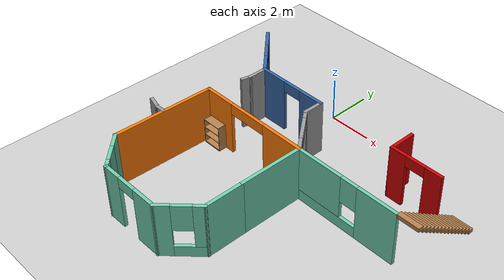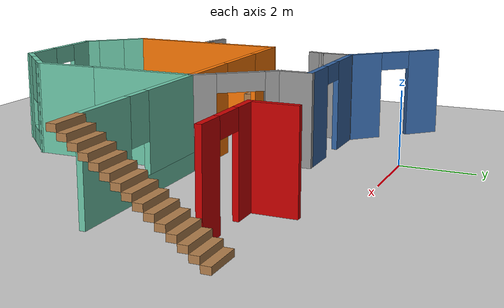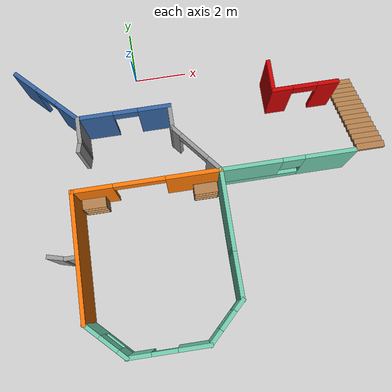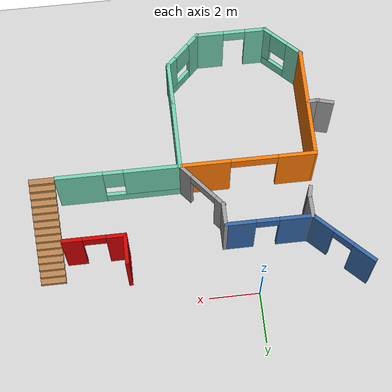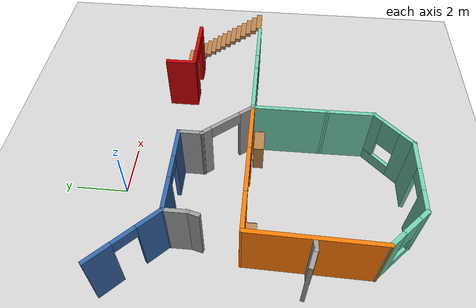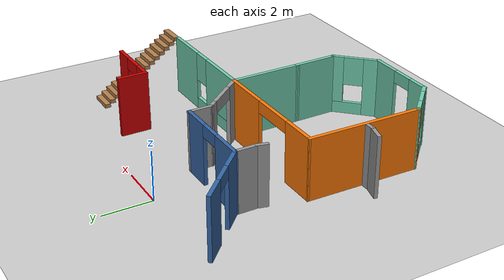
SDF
<sdf version="1.6">
 <world name="default">
  <model name="ground_plane">
   <static>1</static>
   <link name="link">
    <collision name="collision">
     <geometry><plane><normal>0 0 1</normal><size>100 100</size></plane></geometry>
     <surface>
      <contact><collide_bitmask>65535</collide_bitmask></contact>
      <friction><ode><mu>100</mu><mu2>50</mu2></ode></friction>
     </surface>
    </collision>
    <visual name="visual">
     <cast_shadows>0</cast_shadows>
     <geometry><plane><normal>0 0 1</normal><size>100 100</size></plane></geometry>
     <material>
      <script><uri>file://media/materials/scripts/gazebo.material</uri><name>Gazebo/Grey</name></script>
     </material>
    </visual>
   </link>
  </model>
  <model name="model">
   <pose>-1.34408 -2.0758 0 0 -0 0</pose>
   <link name="Stairs_0">
    <visual name="Stairs_0_Visual_0">
     <pose>9.38776 0.705751 0.083333 0 -0 0</pose>
     <geometry><box><size>1 0.233333 0.166667</size></box></geometry>
     <material>
      <script><uri>file://media/materials/scripts/gazebo.material</uri><name>Gazebo/Wood</name></script>
      <ambient>1 1 1 1</ambient>
     </material>
     <meta><layer>0</layer></meta>
    </visual>
    <collision name="Stairs_0_Collision_0">
     <geometry><box><size>1 0.233333 0.166667</size></box></geometry>
     <pose>9.38776 0.705751 0.083333 0 -0 0</pose>
    </collision>
    <visual name="Stairs_0_Visual_1">
     <pose>9.38776 0.472418 0.25 0 -0 0</pose>
     <geometry><box><size>1 0.233333 0.166667</size></box></geometry>
     <material>
      <script><uri>file://media/materials/scripts/gazebo.material</uri><name>Gazebo/Wood</name></script>
      <ambient>1 1 1 1</ambient>
     </material>
     <meta><layer>0</layer></meta>
    </visual>
    <collision name="Stairs_0_Collision_1">
     <geometry><box><size>1 0.233333 0.166667</size></box></geometry>
     <pose>9.38776 0.472418 0.25 0 -0 0</pose>
    </collision>
    <visual name="Stairs_0_Visual_2">
     <pose>9.38776 0.239084 0.416667 0 -0 0</pose>
     <geometry><box><size>1 0.233333 0.166667</size></box></geometry>
     <material>
      <script><uri>file://media/materials/scripts/gazebo.material</uri><name>Gazebo/Wood</name></script>
      <ambient>1 1 1 1</ambient>
     </material>
     <meta><layer>0</layer></meta>
    </visual>
    <collision name="Stairs_0_Collision_2">
     <geometry><box><size>1 0.233333 0.166667</size></box></geometry>
     <pose>9.38776 0.239084 0.416667 0 -0 0</pose>
    </collision>
    <visual name="Stairs_0_Visual_3">
     <pose>9.38776 0.005751 0.583333 0 -0 0</pose>
     <geometry><box><size>1 0.233333 0.166667</size></box></geometry>
     <material>
      <script><uri>file://media/materials/scripts/gazebo.material</uri><name>Gazebo/Wood</name></script>
      <ambient>1 1 1 1</ambient>
     </material>
     <meta><layer>0</layer></meta>
    </visual>
    <collision name="Stairs_0_Collision_3">
     <geometry><box><size>1 0.233333 0.166667</size></box></geometry>
     <pose>9.38776 0.005751 0.583333 0 -0 0</pose>
    </collision>
    <visual name="Stairs_0_Visual_4">
     <pose>9.38776 -0.227582 0.75 0 -0 0</pose>
     <geometry><box><size>1 0.233333 0.166667</size></box></geometry>
     <material>
      <script><uri>file://media/materials/scripts/gazebo.material</uri><name>Gazebo/Wood</name></script>
      <ambient>1 1 1 1</ambient>
     </material>
     <meta><layer>0</layer></meta>
    </visual>
    <collision name="Stairs_0_Collision_4">
     <geometry><box><size>1 0.233333 0.166667</size></box></geometry>
     <pose>9.38776 -0.227582 0.75 0 -0 0</pose>
    </collision>
    <visual name="Stairs_0_Visual_5">
     <pose>9.38776 -0.460916 0.916667 0 -0 0</pose>
     <geometry><box><size>1 0.233333 0.166667</size></box></geometry>
     <material>
      <script><uri>file://media/materials/scripts/gazebo.material</uri><name>Gazebo/Wood</name></script>
      <ambient>1 1 1 1</ambient>
     </material>
     <meta><layer>0</layer></meta>
    </visual>
    <collision name="Stairs_0_Collision_5">
     <geometry><box><size>1 0.233333 0.166667</size></box></geometry>
     <pose>9.38776 -0.460916 0.916667 0 -0 0</pose>
    </collision>
    <visual name="Stairs_0_Visual_6">
     <pose>9.38776 -0.694249 1.08333 0 -0 0</pose>
     <geometry><box><size>1 0.233333 0.166667</size></box></geometry>
     <material>
      <script><uri>file://media/materials/scripts/gazebo.material</uri><name>Gazebo/Wood</name></script>
      <ambient>1 1 1 1</ambient>
     </material>
     <meta><layer>0</layer></meta>
    </visual>
    <collision name="Stairs_0_Collision_6">
     <geometry><box><size>1 0.233333 0.166667</size></box></geometry>
     <pose>9.38776 -0.694249 1.08333 0 -0 0</pose>
    </collision>
    <visual name="Stairs_0_Visual_7">
     <pose>9.38776 -0.927582 1.25 0 -0 0</pose>
     <geometry><box><size>1 0.233333 0.166667</size></box></geometry>
     <material>
      <script><uri>file://media/materials/scripts/gazebo.material</uri><name>Gazebo/Wood</name></script>
      <ambient>1 1 1 1</ambient>
     </material>
     <meta><layer>0</layer></meta>
    </visual>
    <collision name="Stairs_0_Collision_7">
     <geometry><box><size>1 0.233333 0.166667</size></box></geometry>
     <pose>9.38776 -0.927582 1.25 0 -0 0</pose>
    </collision>
    <visual name="Stairs_0_Visual_8">
     <pose>9.38776 -1.16092 1.41667 0 -0 0</pose>
     <geometry><box><size>1 0.233333 0.166667</size></box></geometry>
     <material>
      <script><uri>file://media/materials/scripts/gazebo.material</uri><name>Gazebo/Wood</name></script>
      <ambient>1 1 1 1</ambient>
     </material>
     <meta><layer>0</layer></meta>
    </visual>
    <collision name="Stairs_0_Collision_8">
     <geometry><box><size>1 0.233333 0.166667</size></box></geometry>
     <pose>9.38776 -1.16092 1.41667 0 -0 0</pose>
    </collision>
    <visual name="Stairs_0_Visual_9">
     <pose>9.38776 -1.39425 1.58333 0 -0 0</pose>
     <geometry><box><size>1 0.233333 0.166667</size></box></geometry>
     <material>
      <script><uri>file://media/materials/scripts/gazebo.material</uri><name>Gazebo/Wood</name></script>
      <ambient>1 1 1 1</ambient>
     </material>
     <meta><layer>0</layer></meta>
    </visual>
    <collision name="Stairs_0_Collision_9">
     <geometry><box><size>1 0.233333 0.166667</size></box></geometry>
     <pose>9.38776 -1.39425 1.58333 0 -0 0</pose>
    </collision>
    <visual name="Stairs_0_Visual_10">
     <pose>9.38776 -1.62758 1.75 0 -0 0</pose>
     <geometry><box><size>1 0.233333 0.166667</size></box></geometry>
     <material>
      <script><uri>file://media/materials/scripts/gazebo.material</uri><name>Gazebo/Wood</name></script>
      <ambient>1 1 1 1</ambient>
     </material>
     <meta><layer>0</layer></meta>
    </visual>
    <collision name="Stairs_0_Collision_10">
     <geometry><box><size>1 0.233333 0.166667</size></box></geometry>
     <pose>9.38776 -1.62758 1.75 0 -0 0</pose>
    </collision>
    <visual name="Stairs_0_Visual_11">
     <pose>9.38776 -1.86092 1.91667 0 -0 0</pose>
     <geometry><box><size>1 0.233333 0.166667</size></box></geometry>
     <material>
      <script><uri>file://media/materials/scripts/gazebo.material</uri><name>Gazebo/Wood</name></script>
      <ambient>1 1 1 1</ambient>
     </material>
     <meta><layer>0</layer></meta>
    </visual>
    <collision name="Stairs_0_Collision_11">
     <geometry><box><size>1 0.233333 0.166667</size></box></geometry>
     <pose>9.38776 -1.86092 1.91667 0 -0 0</pose>
    </collision>
    <visual name="Stairs_0_Visual_12">
     <pose>9.38776 -2.09425 2.08333 0 -0 0</pose>
     <geometry><box><size>1 0.233333 0.166667</size></box></geometry>
     <material>
      <script><uri>file://media/materials/scripts/gazebo.material</uri><name>Gazebo/Wood</name></script>
      <ambient>1 1 1 1</ambient>
     </material>
     <meta><layer>0</layer></meta>
    </visual>
    <collision name="Stairs_0_Collision_12">
     <geometry><box><size>1 0.233333 0.166667</size></box></geometry>
     <pose>9.38776 -2.09425 2.08333 0 -0 0</pose>
    </collision>
    <visual name="Stairs_0_Visual_13">
     <pose>9.38776 -2.32758 2.25 0 -0 0</pose>
     <geometry><box><size>1 0.233333 0.166667</size></box></geometry>
     <material>
      <script><uri>file://media/materials/scripts/gazebo.material</uri><name>Gazebo/Wood</name></script>
      <ambient>1 1 1 1</ambient>
     </material>
     <meta><layer>0</layer></meta>
    </visual>
    <collision name="Stairs_0_Collision_13">
     <geometry><box><size>1 0.233333 0.166667</size></box></geometry>
     <pose>9.38776 -2.32758 2.25 0 -0 0</pose>
    </collision>
    <visual name="Stairs_0_Visual_14">
     <pose>9.38776 -2.56092 2.41667 0 -0 0</pose>
     <geometry><box><size>1 0.233333 0.166667</size></box></geometry>
     <material>
      <script><uri>file://media/materials/scripts/gazebo.material</uri><name>Gazebo/Wood</name></script>
      <ambient>1 1 1 1</ambient>
     </material>
     <meta><layer>0</layer></meta>
    </visual>
    <collision name="Stairs_0_Collision_14">
     <geometry><box><size>1 0.233333 0.166667</size></box></geometry>
     <pose>9.38776 -2.56092 2.41667 0 -0 0</pose>
    </collision>
   </link>
   <link name="Wall_12">
    <pose>6.41224 -2.63039 0 0 -0 3.14159</pose>
    <visual name="Wall_12_Visual_0">
     <pose>-1.55241 0 1.25 0 -0 0</pose>
     <geometry><box><size>1.89517 0.15 2.5</size></box></geometry>
     <material>
      <script><uri>file://media/materials/scripts/gazebo.material</uri><name>Gazebo/Grey</name></script>
      <ambient>0.435294 0.796078 0.67451 1</ambient>
     </material>
     <meta><layer>0</layer></meta>
    </visual>
    <collision name="Wall_12_Collision_0">
     <geometry><box><size>1.89517 0.15 2.5</size></box></geometry>
     <pose>-1.55241 0 1.25 0 -0 0</pose>
    </collision>
    <visual name="Wall_12_Visual_1">
     <pose>0.947587 0 0.25 0 -0 0</pose>
     <geometry><box><size>3.10483 0.15 0.5</size></box></geometry>
     <material>
      <script><uri>file://media/materials/scripts/gazebo.material</uri><name>Gazebo/Grey</name></script>
      <ambient>0.435294 0.796078 0.67451 1</ambient>
     </material>
     <meta><layer>0</layer></meta>
    </visual>
    <collision name="Wall_12_Collision_1">
     <geometry><box><size>3.10483 0.15 0.5</size></box></geometry>
     <pose>0.947587 0 0.25 0 -0 0</pose>
    </collision>
    <visual name="Wall_12_Visual_2">
     <pose>1.34759 0 1.5 0 -0 0</pose>
     <geometry><box><size>2.30483 0.15 2</size></box></geometry>
     <material>
      <script><uri>file://media/materials/scripts/gazebo.material</uri><name>Gazebo/Grey</name></script>
      <ambient>0.435294 0.796078 0.67451 1</ambient>
     </material>
     <meta><layer>0</layer></meta>
    </visual>
    <collision name="Wall_12_Collision_2">
     <geometry><box><size>2.30483 0.15 2</size></box></geometry>
     <pose>1.34759 0 1.5 0 -0 0</pose>
    </collision>
    <visual name="Wall_12_Visual_3">
     <pose>-0.204827 0 1.9 0 -0 0</pose>
     <geometry><box><size>0.8 0.15 1.2</size></box></geometry>
     <material>
      <script><uri>file://media/materials/scripts/gazebo.material</uri><name>Gazebo/Grey</name></script>
      <ambient>0.435294 0.796078 0.67451 1</ambient>
     </material>
     <meta><layer>0</layer></meta>
    </visual>
    <collision name="Wall_12_Collision_3">
     <geometry><box><size>0.8 0.15 1.2</size></box></geometry>
     <pose>-0.204827 0 1.9 0 -0 0</pose>
    </collision>
   </link>
   <link name="Wall_13">
    <collision name="Wall_13_Collision">
     <geometry><box><size>3 0.15 2.5</size></box></geometry>
     <pose>0 0 1.25 0 -0 0</pose>
    </collision>
    <visual name="Wall_13_Visual">
     <pose>0 0 1.25 0 -0 0</pose>
     <geometry><box><size>3 0.15 2.5</size></box></geometry>
     <material>
      <script><uri>file://media/materials/scripts/gazebo.material</uri><name>Gazebo/Grey</name></script>
      <ambient>0.435294 0.796078 0.67451 1</ambient>
     </material>
     <meta><layer>0</layer></meta>
    </visual>
    <pose>3.98724 -4.05539 0 0 -0 -1.5708</pose>
   </link>
   <link name="Wall_28">
    <pose>-1.85172 1.0145 0 0 -0 -0.785398</pose>
    <visual name="Wall_28_Visual_0">
     <pose>-0.981423 0 1.25 0 -0 0</pose>
     <geometry><box><size>1.03716 0.15 2.5</size></box></geometry>
     <material>
      <script><uri>file://media/materials/scripts/gazebo.material</uri><name>Gazebo/Grey</name></script>
      <ambient>0.203922 0.396078 0.643137 1</ambient>
     </material>
     <meta><layer>0</layer></meta>
    </visual>
    <collision name="Wall_28_Collision_0">
     <geometry><box><size>1.03716 0.15 2.5</size></box></geometry>
     <pose>-0.981423 0 1.25 0 -0 0</pose>
    </collision>
    <visual name="Wall_28_Visual_1">
     <pose>0.968577 0 1.25 0 -0 0</pose>
     <geometry><box><size>1.06285 0.15 2.5</size></box></geometry>
     <material>
      <script><uri>file://media/materials/scripts/gazebo.material</uri><name>Gazebo/Grey</name></script>
      <ambient>0.203922 0.396078 0.643137 1</ambient>
     </material>
     <meta><layer>0</layer></meta>
    </visual>
    <collision name="Wall_28_Collision_1">
     <geometry><box><size>1.06285 0.15 2.5</size></box></geometry>
     <pose>0.968577 0 1.25 0 -0 0</pose>
    </collision>
    <visual name="Wall_28_Visual_2">
     <pose>-0.012845 0 2.25 0 -0 0</pose>
     <geometry><box><size>0.9 0.15 0.5</size></box></geometry>
     <material>
      <script><uri>file://media/materials/scripts/gazebo.material</uri><name>Gazebo/Grey</name></script>
      <ambient>0.203922 0.396078 0.643137 1</ambient>
     </material>
     <meta><layer>0</layer></meta>
    </visual>
    <collision name="Wall_28_Collision_2">
     <geometry><box><size>0.9 0.15 0.5</size></box></geometry>
     <pose>-0.012845 0 2.25 0 -0 0</pose>
    </collision>
   </link>
   <link name="Wall_31">
    <pose>0.83091 0.006871 0 0 -0 0</pose>
    <visual name="Wall_31_Visual_0">
     <pose>-1.06671 0 1.25 0 -0 0</pose>
     <geometry><box><size>1.36658 0.15 2.5</size></box></geometry>
     <material>
      <script><uri>file://media/materials/scripts/gazebo.material</uri><name>Gazebo/Grey</name></script>
      <ambient>0.203922 0.396078 0.643137 1</ambient>
     </material>
     <meta><layer>0</layer></meta>
    </visual>
    <collision name="Wall_31_Collision_0">
     <geometry><box><size>1.36658 0.15 2.5</size></box></geometry>
     <pose>-1.06671 0 1.25 0 -0 0</pose>
    </collision>
    <visual name="Wall_31_Visual_1">
     <pose>1.13329 0 1.25 0 -0 0</pose>
     <geometry><box><size>1.23341 0.15 2.5</size></box></geometry>
     <material>
      <script><uri>file://media/materials/scripts/gazebo.material</uri><name>Gazebo/Grey</name></script>
      <ambient>0.203922 0.396078 0.643137 1</ambient>
     </material>
     <meta><layer>0</layer></meta>
    </visual>
    <collision name="Wall_31_Collision_1">
     <geometry><box><size>1.23341 0.15 2.5</size></box></geometry>
     <pose>1.13329 0 1.25 0 -0 0</pose>
    </collision>
    <visual name="Wall_31_Visual_2">
     <pose>0.066585 0 2.25 0 -0 0</pose>
     <geometry><box><size>0.9 0.15 0.5</size></box></geometry>
     <material>
      <script><uri>file://media/materials/scripts/gazebo.material</uri><name>Gazebo/Grey</name></script>
      <ambient>0.203922 0.396078 0.643137 1</ambient>
     </material>
     <meta><layer>0</layer></meta>
    </visual>
    <collision name="Wall_31_Collision_2">
     <geometry><box><size>0.9 0.15 0.5</size></box></geometry>
     <pose>0.066585 0 2.25 0 -0 0</pose>
    </collision>
   </link>
   <link name="Wall_42">
    <collision name="Wall_42_Collision">
     <geometry><box><size>1.25 0.15 2.5</size></box></geometry>
     <pose>0 0 1.25 0 -0 0</pose>
    </collision>
    <visual name="Wall_42_Visual">
     <pose>0 0 1.25 0 -0 0</pose>
     <geometry><box><size>1.25 0.15 2.5</size></box></geometry>
     <material>
      <script><uri>file://media/materials/scripts/gazebo.material</uri><name>Gazebo/Grey</name></script>
      <ambient>0.8 0 0 1</ambient>
     </material>
     <meta><layer>0</layer></meta>
    </visual>
    <pose>6.34947 0.557478 0 0 -0 -1.5708</pose>
   </link>
   <link name="Wall_43">
    <pose>7.52447 0.007478 0 0 -0 0</pose>
    <visual name="Wall_43_Visual_0">
     <pose>-0.852595 0 1.25 0 -0 0</pose>
     <geometry><box><size>0.794811 0.15 2.5</size></box></geometry>
     <material>
      <script><uri>file://media/materials/scripts/gazebo.material</uri><name>Gazebo/Grey</name></script>
      <ambient>0.8 0 0 1</ambient>
     </material>
     <meta><layer>0</layer></meta>
    </visual>
    <collision name="Wall_43_Collision_0">
     <geometry><box><size>0.794811 0.15 2.5</size></box></geometry>
     <pose>-0.852595 0 1.25 0 -0 0</pose>
    </collision>
    <visual name="Wall_43_Visual_1">
     <pose>0.847405 0 1.25 0 -0 0</pose>
     <geometry><box><size>0.805189 0.15 2.5</size></box></geometry>
     <material>
      <script><uri>file://media/materials/scripts/gazebo.material</uri><name>Gazebo/Grey</name></script>
      <ambient>0.8 0 0 1</ambient>
     </material>
     <meta><layer>0</layer></meta>
    </visual>
    <collision name="Wall_43_Collision_1">
     <geometry><box><size>0.805189 0.15 2.5</size></box></geometry>
     <pose>0.847405 0 1.25 0 -0 0</pose>
    </collision>
    <visual name="Wall_43_Visual_2">
     <pose>-0.005189 0 2.25 0 -0 0</pose>
     <geometry><box><size>0.9 0.15 0.5</size></box></geometry>
     <material>
      <script><uri>file://media/materials/scripts/gazebo.material</uri><name>Gazebo/Grey</name></script>
      <ambient>0.8 0 0 1</ambient>
     </material>
     <meta><layer>0</layer></meta>
    </visual>
    <collision name="Wall_43_Collision_2">
     <geometry><box><size>0.9 0.15 0.5</size></box></geometry>
     <pose>-0.005189 0 2.25 0 -0 0</pose>
    </collision>
   </link>
   <link name="Wall_58">
    <pose>-0.808686 -7.88447 0 0 -0 -0.785398</pose>
    <visual name="Wall_58_Visual_0">
     <pose>-0.62591 0 1.25 0 -0 0</pose>
     <geometry><box><size>0.74818 0.15 2.5</size></box></geometry>
     <material>
      <script><uri>file://media/materials/scripts/gazebo.material</uri><name>Gazebo/Grey</name></script>
      <ambient>0.435294 0.796078 0.67451 1</ambient>
     </material>
     <meta><layer>0</layer></meta>
    </visual>
    <collision name="Wall_58_Collision_0">
     <geometry><box><size>0.74818 0.15 2.5</size></box></geometry>
     <pose>-0.62591 0 1.25 0 -0 0</pose>
    </collision>
    <visual name="Wall_58_Visual_1">
     <pose>0.37409 0 0.25 0 -0 0</pose>
     <geometry><box><size>1.25182 0.15 0.5</size></box></geometry>
     <material>
      <script><uri>file://media/materials/scripts/gazebo.material</uri><name>Gazebo/Grey</name></script>
      <ambient>0.435294 0.796078 0.67451 1</ambient>
     </material>
     <meta><layer>0</layer></meta>
    </visual>
    <collision name="Wall_58_Collision_1">
     <geometry><box><size>1.25182 0.15 0.5</size></box></geometry>
     <pose>0.37409 0 0.25 0 -0 0</pose>
    </collision>
    <visual name="Wall_58_Visual_2">
     <pose>0.77409 0 1.5 0 -0 0</pose>
     <geometry><box><size>0.45182 0.15 2</size></box></geometry>
     <material>
      <script><uri>file://media/materials/scripts/gazebo.material</uri><name>Gazebo/Grey</name></script>
      <ambient>0.435294 0.796078 0.67451 1</ambient>
     </material>
     <meta><layer>0</layer></meta>
    </visual>
    <collision name="Wall_58_Collision_2">
     <geometry><box><size>0.45182 0.15 2</size></box></geometry>
     <pose>0.77409 0 1.5 0 -0 0</pose>
    </collision>
    <visual name="Wall_58_Visual_3">
     <pose>0.14818 0 1.9 0 -0 0</pose>
     <geometry><box><size>0.8 0.15 1.2</size></box></geometry>
     <material>
      <script><uri>file://media/materials/scripts/gazebo.material</uri><name>Gazebo/Grey</name></script>
      <ambient>0.435294 0.796078 0.67451 1</ambient>
     </material>
     <meta><layer>0</layer></meta>
    </visual>
    <collision name="Wall_58_Collision_3">
     <geometry><box><size>0.8 0.15 1.2</size></box></geometry>
     <pose>0.14818 0 1.9 0 -0 0</pose>
    </collision>
   </link>
   <link name="Wall_59">
    <pose>1.27039 -8.53854 0 0 -0 0</pose>
    <visual name="Wall_59_Visual_0">
     <pose>-1.04657 0 1.25 0 -0 0</pose>
     <geometry><box><size>0.906857 0.15 2.5</size></box></geometry>
     <material>
      <script><uri>file://media/materials/scripts/gazebo.material</uri><name>Gazebo/Grey</name></script>
      <ambient>0.435294 0.796078 0.67451 1</ambient>
     </material>
     <meta><layer>0</layer></meta>
    </visual>
    <collision name="Wall_59_Collision_0">
     <geometry><box><size>0.906857 0.15 2.5</size></box></geometry>
     <pose>-1.04657 0 1.25 0 -0 0</pose>
    </collision>
    <visual name="Wall_59_Visual_1">
     <pose>0.903429 0 1.25 0 -0 0</pose>
     <geometry><box><size>1.19314 0.15 2.5</size></box></geometry>
     <material>
      <script><uri>file://media/materials/scripts/gazebo.material</uri><name>Gazebo/Grey</name></script>
      <ambient>0.435294 0.796078 0.67451 1</ambient>
     </material>
     <meta><layer>0</layer></meta>
    </visual>
    <collision name="Wall_59_Collision_1">
     <geometry><box><size>1.19314 0.15 2.5</size></box></geometry>
     <pose>0.903429 0 1.25 0 -0 0</pose>
    </collision>
    <visual name="Wall_59_Visual_2">
     <pose>-0.143143 0 2.25 0 -0 0</pose>
     <geometry><box><size>0.9 0.15 0.5</size></box></geometry>
     <material>
      <script><uri>file://media/materials/scripts/gazebo.material</uri><name>Gazebo/Grey</name></script>
      <ambient>0.435294 0.796078 0.67451 1</ambient>
     </material>
     <meta><layer>0</layer></meta>
    </visual>
    <collision name="Wall_59_Collision_2">
     <geometry><box><size>0.9 0.15 0.5</size></box></geometry>
     <pose>-0.143143 0 2.25 0 -0 0</pose>
    </collision>
   </link>
   <link name="Wall_62">
    <pose>3.34946 -7.88447 0 0 -0 0.785398</pose>
    <visual name="Wall_62_Visual_0">
     <pose>-0.661474 0 1.25 0 -0 0</pose>
     <geometry><box><size>0.677052 0.15 2.5</size></box></geometry>
     <material>
      <script><uri>file://media/materials/scripts/gazebo.material</uri><name>Gazebo/Grey</name></script>
      <ambient>0.435294 0.796078 0.67451 1</ambient>
     </material>
     <meta><layer>0</layer></meta>
    </visual>
    <collision name="Wall_62_Collision_0">
     <geometry><box><size>0.677052 0.15 2.5</size></box></geometry>
     <pose>-0.661474 0 1.25 0 -0 0</pose>
    </collision>
    <visual name="Wall_62_Visual_1">
     <pose>0.338526 0 0.25 0 -0 0</pose>
     <geometry><box><size>1.32295 0.15 0.5</size></box></geometry>
     <material>
      <script><uri>file://media/materials/scripts/gazebo.material</uri><name>Gazebo/Grey</name></script>
      <ambient>0.435294 0.796078 0.67451 1</ambient>
     </material>
     <meta><layer>0</layer></meta>
    </visual>
    <collision name="Wall_62_Collision_1">
     <geometry><box><size>1.32295 0.15 0.5</size></box></geometry>
     <pose>0.338526 0 0.25 0 -0 0</pose>
    </collision>
    <visual name="Wall_62_Visual_2">
     <pose>0.738526 0 1.5 0 -0 0</pose>
     <geometry><box><size>0.522948 0.15 2</size></box></geometry>
     <material>
      <script><uri>file://media/materials/scripts/gazebo.material</uri><name>Gazebo/Grey</name></script>
      <ambient>0.435294 0.796078 0.67451 1</ambient>
     </material>
     <meta><layer>0</layer></meta>
    </visual>
    <collision name="Wall_62_Collision_2">
     <geometry><box><size>0.522948 0.15 2</size></box></geometry>
     <pose>0.738526 0 1.5 0 -0 0</pose>
    </collision>
    <visual name="Wall_62_Visual_3">
     <pose>0.077052 0 1.9 0 -0 0</pose>
     <geometry><box><size>0.8 0.15 1.2</size></box></geometry>
     <material>
      <script><uri>file://media/materials/scripts/gazebo.material</uri><name>Gazebo/Grey</name></script>
      <ambient>0.435294 0.796078 0.67451 1</ambient>
     </material>
     <meta><layer>0</layer></meta>
    </visual>
    <collision name="Wall_62_Collision_3">
     <geometry><box><size>0.8 0.15 1.2</size></box></geometry>
     <pose>0.077052 0 1.9 0 -0 0</pose>
    </collision>
   </link>
   <link name="Wall_63">
    <collision name="Wall_63_Collision">
     <geometry><box><size>1.90008 0.15 2.5</size></box></geometry>
     <pose>0 0 1.25 0 -0 0</pose>
    </collision>
    <visual name="Wall_63_Visual">
     <pose>0 0 1.25 0 -0 0</pose>
     <geometry><box><size>1.90008 0.15 2.5</size></box></geometry>
     <material>
      <script><uri>file://media/materials/scripts/gazebo.material</uri><name>Gazebo/Grey</name></script>
      <ambient>0.435294 0.796078 0.67451 1</ambient>
     </material>
     <meta><layer>0</layer></meta>
    </visual>
    <pose>3.99539 -6.35539 0 0 -0 1.58011</pose>
   </link>
   <link name="Wall_69">
    <collision name="Wall_69_Collision">
     <geometry><box><size>4.75109 0.15 2.5</size></box></geometry>
     <pose>0 0 1.25 0 -0 0</pose>
    </collision>
    <visual name="Wall_69_Visual">
     <pose>0 0 1.25 0 -0 0</pose>
     <geometry><box><size>4.75109 0.15 2.5</size></box></geometry>
     <material>
      <script><uri>file://media/materials/scripts/gazebo.material</uri><name>Gazebo/Grey</name></script>
      <ambient>0.996078 0.47451 0.0196078 1</ambient>
     </material>
     <meta><layer>0</layer></meta>
    </visual>
    <pose>-1.41276 -4.93039 0 0 -0 1.54906</pose>
   </link>
   <link name="Wall_71">
    <pose>1.31224 -2.63039 0 0 -0 0</pose>
    <visual name="Wall_71_Visual_0">
     <pose>-1.97562 0 1.25 0 -0 0</pose>
     <geometry><box><size>1.54876 0.15 2.5</size></box></geometry>
     <material>
      <script><uri>file://media/materials/scripts/gazebo.material</uri><name>Gazebo/Grey</name></script>
      <ambient>0.996078 0.47451 0.0196078 1</ambient>
     </material>
     <meta><layer>0</layer></meta>
    </visual>
    <collision name="Wall_71_Collision_0">
     <geometry><box><size>1.54876 0.15 2.5</size></box></geometry>
     <pose>-1.97562 0 1.25 0 -0 0</pose>
    </collision>
    <visual name="Wall_71_Visual_1">
     <pose>1.71382 0 1.25 0 -0 0</pose>
     <geometry><box><size>2.07235 0.15 2.5</size></box></geometry>
     <material>
      <script><uri>file://media/materials/scripts/gazebo.material</uri><name>Gazebo/Grey</name></script>
      <ambient>0.996078 0.47451 0.0196078 1</ambient>
     </material>
     <meta><layer>0</layer></meta>
    </visual>
    <collision name="Wall_71_Collision_1">
     <geometry><box><size>2.07235 0.15 2.5</size></box></geometry>
     <pose>1.71382 0 1.25 0 -0 0</pose>
    </collision>
    <visual name="Wall_71_Visual_2">
     <pose>-0.261794 0 2.25 0 -0 0</pose>
     <geometry><box><size>1.87889 0.15 0.5</size></box></geometry>
     <material>
      <script><uri>file://media/materials/scripts/gazebo.material</uri><name>Gazebo/Grey</name></script>
      <ambient>0.996078 0.47451 0.0196078 1</ambient>
     </material>
     <meta><layer>0</layer></meta>
    </visual>
    <collision name="Wall_71_Collision_2">
     <geometry><box><size>1.87889 0.15 0.5</size></box></geometry>
     <pose>-0.261794 0 2.25 0 -0 0</pose>
    </collision>
   </link>
   <link name="Wall_75">
    <collision name="Wall_75_Collision">
     <geometry><box><size>0.5 0.15 2.5</size></box></geometry>
     <pose>0 0 1.25 0 -0 0</pose>
    </collision>
    <visual name="Wall_75_Visual">
     <pose>0 0 1.25 0 -0 0</pose>
     <geometry><box><size>0.5 0.15 2.5</size></box></geometry>
     <material>
      <script><uri>file://media/materials/scripts/gazebo.material</uri><name>Gazebo/Grey</name></script>
      <ambient>0 0 0 1</ambient>
     </material>
     <meta><layer>0</layer></meta>
    </visual>
    <pose>-1.63295 -4.93634 0 0 -0 3.14159</pose>
   </link>
   <link name="Wall_76">
    <collision name="Wall_76_Collision">
     <geometry><box><size>0.75 0.15 2.5</size></box></geometry>
     <pose>0 0 1.25 0 -0 0</pose>
    </collision>
    <visual name="Wall_76_Visual">
     <pose>0 0 1.25 0 -0 0</pose>
     <geometry><box><size>0.75 0.15 2.5</size></box></geometry>
     <material>
      <script><uri>file://media/materials/scripts/gazebo.material</uri><name>Gazebo/Grey</name></script>
      <ambient>0 0 0 1</ambient>
     </material>
     <meta><layer>0</layer></meta>
    </visual>
    <pose>-2.09773 -4.85869 0 0 -0 2.87979</pose>
   </link>
   <link name="Wall_87">
    <collision name="Wall_87_Collision">
     <geometry><box><size>1 0.15 2.5</size></box></geometry>
     <pose>0 0 1.25 0 -0 0</pose>
    </collision>
    <visual name="Wall_87_Visual">
     <pose>0 0 1.25 0 -0 0</pose>
     <geometry><box><size>1 0.15 2.5</size></box></geometry>
     <material>
      <script><uri>file://media/materials/scripts/gazebo.material</uri><name>Gazebo/Grey</name></script>
      <ambient>0 0 0 1</ambient>
     </material>
     <meta><layer>0</layer></meta>
    </visual>
    <pose>-0.84409 -0.418128 0 0 -0 -1.5708</pose>
   </link>
   <link name="Wall_88">
    <collision name="Wall_88_Collision">
     <geometry><box><size>0.5 0.15 2.5</size></box></geometry>
     <pose>0 0 1.25 0 -0 0</pose>
    </collision>
    <visual name="Wall_88_Visual">
     <pose>0 0 1.25 0 -0 0</pose>
     <geometry><box><size>0.5 0.15 2.5</size></box></geometry>
     <material>
      <script><uri>file://media/materials/scripts/gazebo.material</uri><name>Gazebo/Grey</name></script>
      <ambient>0 0 0 1</ambient>
     </material>
     <meta><layer>0</layer></meta>
    </visual>
    <pose>-0.889384 -1.01217 0 0 -0 -1.8326</pose>
   </link>
   <link name="Wall_91">
    <collision name="Wall_91_Collision">
     <geometry><box><size>1 0.15 2.5</size></box></geometry>
     <pose>0 0 1.25 0 -0 0</pose>
    </collision>
    <visual name="Wall_91_Visual">
     <pose>0 0 1.25 0 -0 0</pose>
     <geometry><box><size>1 0.15 2.5</size></box></geometry>
     <material>
      <script><uri>file://media/materials/scripts/gazebo.material</uri><name>Gazebo/Grey</name></script>
      <ambient>0 0 0 1</ambient>
     </material>
     <meta><layer>0</layer></meta>
    </visual>
    <pose>2.50591 -0.418128 0 0 -0 -1.5708</pose>
   </link>
   <link name="Wall_92">
    <pose>3.24657 -1.73676 0 0 -0 -0.878724</pose>
    <visual name="Wall_92_Visual_0">
     <pose>-0.9975 0 1.25 0 -0 0</pose>
     <geometry><box><size>0.476348 0.15 2.5</size></box></geometry>
     <material>
      <script><uri>file://media/materials/scripts/gazebo.material</uri><name>Gazebo/Grey</name></script>
      <ambient>0 0 0 1</ambient>
     </material>
     <meta><layer>0</layer></meta>
    </visual>
    <collision name="Wall_92_Collision_0">
     <geometry><box><size>0.476348 0.15 2.5</size></box></geometry>
     <pose>-0.9975 0 1.25 0 -0 0</pose>
    </collision>
    <visual name="Wall_92_Visual_1">
     <pose>0.879986 0 1.25 0 -0 0</pose>
     <geometry><box><size>0.711375 0.15 2.5</size></box></geometry>
     <material>
      <script><uri>file://media/materials/scripts/gazebo.material</uri><name>Gazebo/Grey</name></script>
      <ambient>0 0 0 1</ambient>
     </material>
     <meta><layer>0</layer></meta>
    </visual>
    <collision name="Wall_92_Collision_1">
     <geometry><box><size>0.711375 0.15 2.5</size></box></geometry>
     <pose>0.879986 0 1.25 0 -0 0</pose>
    </collision>
    <visual name="Wall_92_Visual_2">
     <pose>-0.117514 0 2.25 0 -0 0</pose>
     <geometry><box><size>1.28362 0.15 0.5</size></box></geometry>
     <material>
      <script><uri>file://media/materials/scripts/gazebo.material</uri><name>Gazebo/Grey</name></script>
      <ambient>0 0 0 1</ambient>
     </material>
     <meta><layer>0</layer></meta>
    </visual>
    <collision name="Wall_92_Collision_2">
     <geometry><box><size>1.28362 0.15 0.5</size></box></geometry>
     <pose>-0.117514 0 2.25 0 -0 0</pose>
    </collision>
   </link>
   <static>1</static>
  </model>
  <model name="bookshelf_2">
   <static>1</static>
   <link name="link">
    <inertial><mass>1</mass></inertial>
    <collision name="back">
     <pose>0 0.005 0.6 0 -0 0</pose>
     <geometry><box><size>0.9 0.01 1.2</size></box></geometry>
    </collision>
    <visual name="visual1">
     <pose>0 0.005 0.6 0 -0 0</pose>
     <geometry><box><size>0.9 0.01 1.2</size></box></geometry>
     <material>
      <script><uri>file://media/materials/scripts/gazebo.material</uri><name>Gazebo/Wood</name></script>
     </material>
    </visual>
    <collision name="left_side">
     <pose>0.45 -0.195 0.6 0 -0 0</pose>
     <geometry><box><size>0.02 0.4 1.2</size></box></geometry>
    </collision>
    <visual name="visual2">
     <pose>0.45 -0.195 0.6 0 -0 0</pose>
     <geometry><box><size>0.02 0.4 1.2</size></box></geometry>
     <material>
      <script><uri>file://media/materials/scripts/gazebo.material</uri><name>Gazebo/Wood</name></script>
     </material>
    </visual>
    <collision name="right_side">
     <pose>-0.45 -0.195 0.6 0 -0 0</pose>
     <geometry><box><size>0.02 0.4 1.2</size></box></geometry>
    </collision>
    <visual name="visual3">
     <pose>-0.45 -0.195 0.6 0 -0 0</pose>
     <geometry><box><size>0.02 0.4 1.2</size></box></geometry>
     <material>
      <script><uri>file://media/materials/scripts/gazebo.material</uri><name>Gazebo/Wood</name></script>
     </material>
    </visual>
    <collision name="bottom">
     <pose>0 -0.195 0.03 0 -0 0</pose>
     <geometry><box><size>0.88 0.4 0.06</size></box></geometry>
    </collision>
    <visual name="visual4">
     <pose>0 -0.195 0.03 0 -0 0</pose>
     <geometry><box><size>0.88 0.4 0.06</size></box></geometry>
     <material>
      <script><uri>file://media/materials/scripts/gazebo.material</uri><name>Gazebo/Wood</name></script>
     </material>
    </visual>
    <collision name="top">
     <pose>0 -0.195 1.19 0 -0 0</pose>
     <geometry><box><size>0.88 0.4 0.02</size></box></geometry>
    </collision>
    <visual name="visual5">
     <pose>0 -0.195 1.19 0 -0 0</pose>
     <geometry><box><size>0.88 0.4 0.02</size></box></geometry>
     <material>
      <script><uri>file://media/materials/scripts/gazebo.material</uri><name>Gazebo/Wood</name></script>
     </material>
    </visual>
    <collision name="low_shelf">
     <pose>0 -0.195 0.43 0 -0 0</pose>
     <geometry><box><size>0.88 0.4 0.02</size></box></geometry>
    </collision>
    <visual name="visual6">
     <pose>0 -0.195 0.43 0 -0 0</pose>
     <geometry><box><size>0.88 0.4 0.02</size></box></geometry>
     <material>
      <script><uri>file://media/materials/scripts/gazebo.material</uri><name>Gazebo/Wood</name></script>
     </material>
    </visual>
    <collision name="high_shelf">
     <pose>0 -0.195 0.8 0 -0 0</pose>
     <geometry><box><size>0.88 0.4 0.02</size></box></geometry>
    </collision>
    <visual name="visual7">
     <pose>0 -0.195 0.8 0 -0 0</pose>
     <geometry><box><size>0.88 0.4 0.02</size></box></geometry>
     <material>
      <script><uri>file://media/materials/scripts/gazebo.material</uri><name>Gazebo/Wood</name></script>
     </material>
    </visual>
   </link>
   <pose>2.06306 -4.83875 0 0 -0 0</pose>
  </model>
  <model name="bookshelf_3">
   <static>1</static>
   <link name="link">
    <inertial><mass>1</mass></inertial>
    <collision name="back">
     <pose>0 0.005 0.6 0 -0 0</pose>
     <geometry><box><size>0.9 0.01 1.2</size></box></geometry>
    </collision>
    <visual name="visual1">
     <pose>0 0.005 0.6 0 -0 0</pose>
     <geometry><box><size>0.9 0.01 1.2</size></box></geometry>
     <material>
      <script><uri>file://media/materials/scripts/gazebo.material</uri><name>Gazebo/Wood</name></script>
     </material>
    </visual>
    <collision name="left_side">
     <pose>0.45 -0.195 0.6 0 -0 0</pose>
     <geometry><box><size>0.02 0.4 1.2</size></box></geometry>
    </collision>
    <visual name="visual2">
     <pose>0.45 -0.195 0.6 0 -0 0</pose>
     <geometry><box><size>0.02 0.4 1.2</size></box></geometry>
     <material>
      <script><uri>file://media/materials/scripts/gazebo.material</uri><name>Gazebo/Wood</name></script>
     </material>
    </visual>
    <collision name="right_side">
     <pose>-0.45 -0.195 0.6 0 -0 0</pose>
     <geometry><box><size>0.02 0.4 1.2</size></box></geometry>
    </collision>
    <visual name="visual3">
     <pose>-0.45 -0.195 0.6 0 -0 0</pose>
     <geometry><box><size>0.02 0.4 1.2</size></box></geometry>
     <material>
      <script><uri>file://media/materials/scripts/gazebo.material</uri><name>Gazebo/Wood</name></script>
     </material>
    </visual>
    <collision name="bottom">
     <pose>0 -0.195 0.03 0 -0 0</pose>
     <geometry><box><size>0.88 0.4 0.06</size></box></geometry>
    </collision>
    <visual name="visual4">
     <pose>0 -0.195 0.03 0 -0 0</pose>
     <geometry><box><size>0.88 0.4 0.06</size></box></geometry>
     <material>
      <script><uri>file://media/materials/scripts/gazebo.material</uri><name>Gazebo/Wood</name></script>
     </material>
    </visual>
    <collision name="top">
     <pose>0 -0.195 1.19 0 -0 0</pose>
     <geometry><box><size>0.88 0.4 0.02</size></box></geometry>
    </collision>
    <visual name="visual5">
     <pose>0 -0.195 1.19 0 -0 0</pose>
     <geometry><box><size>0.88 0.4 0.02</size></box></geometry>
     <material>
      <script><uri>file://media/materials/scripts/gazebo.material</uri><name>Gazebo/Wood</name></script>
     </material>
    </visual>
    <collision name="low_shelf">
     <pose>0 -0.195 0.43 0 -0 0</pose>
     <geometry><box><size>0.88 0.4 0.02</size></box></geometry>
    </collision>
    <visual name="visual6">
     <pose>0 -0.195 0.43 0 -0 0</pose>
     <geometry><box><size>0.88 0.4 0.02</size></box></geometry>
     <material>
      <script><uri>file://media/materials/scripts/gazebo.material</uri><name>Gazebo/Wood</name></script>
     </material>
    </visual>
    <collision name="high_shelf">
     <pose>0 -0.195 0.8 0 -0 0</pose>
     <geometry><box><size>0.88 0.4 0.02</size></box></geometry>
    </collision>
    <visual name="visual7">
     <pose>0 -0.195 0.8 0 -0 0</pose>
     <geometry><box><size>0.88 0.4 0.02</size></box></geometry>
     <material>
      <script><uri>file://media/materials/scripts/gazebo.material</uri><name>Gazebo/Wood</name></script>
     </material>
    </visual>
   </link>
   <pose>-2.12049 -4.77752 0 0 -0 0</pose>
  </model>
 </world>
</sdf>
